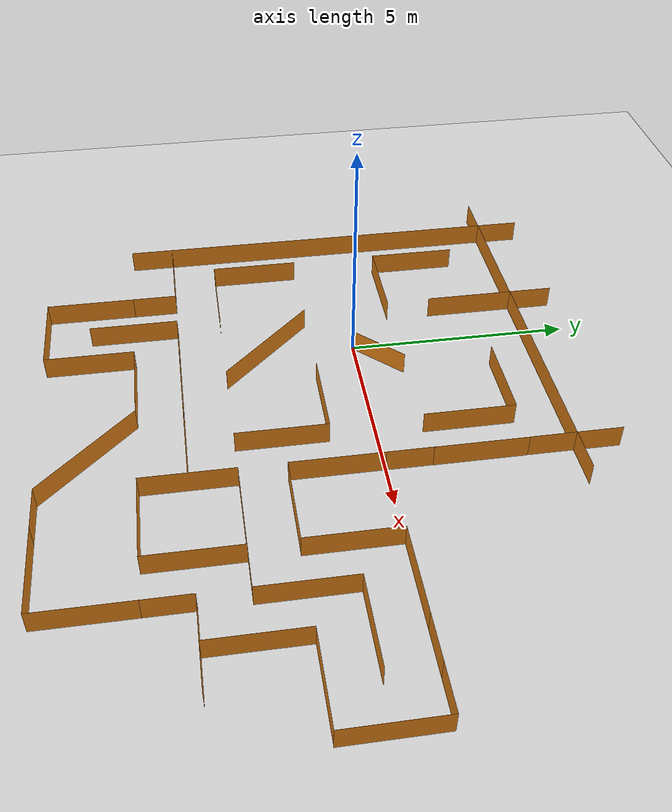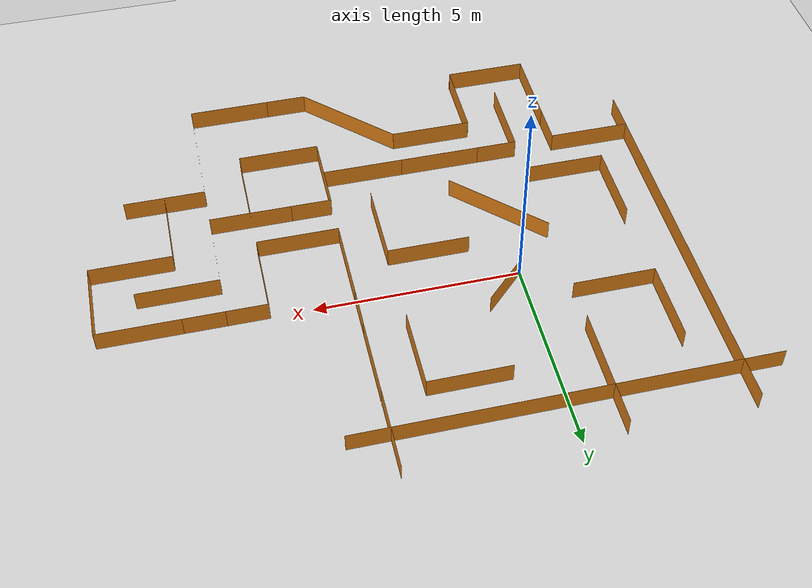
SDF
<sdf version="1.6">
 <world name="default">
  <light name="sun" type="directional">
   <pose>0 0 10 0 -0 0</pose>
   <diffuse>0.8 0.8 0.8 1</diffuse>
   <specular>0.1 0.1 0.1 1</specular>
   <attenuation>
    <range>1000</range>
    <constant>0.9</constant>
    <linear>0.01</linear>
    <quadratic>0.001</quadratic>
   </attenuation>
   <direction>-0.5 0.5 -1</direction>
  </light>
  <model name="ground_plane">
   <static>1</static>
   <link name="link">
    <collision name="collision">
     <geometry><plane><normal>0 0 1</normal><size>100 100</size></plane></geometry>
     <surface><friction><ode><mu>100</mu><mu2>50</mu2></ode></friction></surface>
    </collision>
    <visual name="visual">
     <cast_shadows>0</cast_shadows>
     <geometry><plane><normal>0 0 1</normal><size>100 100</size></plane></geometry>
     <material>
      <script><uri>file://media/materials/scripts/gazebo.material</uri><name>Gazebo/Grey</name></script>
     </material>
    </visual>
   </link>
  </model>
  <model name="wall_0">
   <static>1</static>
   <link name="link">
    <collision name="collision"><geometry><box><size>10 0.001 1</size></box></geometry></collision>
    <visual name="visual">
     <geometry><box><size>10 0.001 1</size></box></geometry>
     <material>
      <script><name>Gazebo/Orange</name><uri>file://media/materials/scripts/gazebo.material</uri></script>
     </material>
    </visual>
   </link>
   <pose>0 4 0 0 0 -3.14159</pose>
  </model>
  <model name="wall_1">
   <static>1</static>
   <link name="link">
    <collision name="collision"><geometry><box><size>10 0.001 1</size></box></geometry></collision>
    <visual name="visual">
     <geometry><box><size>10 0.001 1</size></box></geometry>
     <material>
      <script><name>Gazebo/Orange</name><uri>file://media/materials/scripts/gazebo.material</uri></script>
     </material>
    </visual>
   </link>
   <pose>-4 0 0 0 0 -1.5708</pose>
  </model>
  <model name="wall_4">
   <static>1</static>
   <link name="link">
    <collision name="collision"><geometry><box><size>2 0.001 1</size></box></geometry></collision>
    <visual name="visual">
     <geometry><box><size>2 0.001 1</size></box></geometry>
     <material>
      <script><name>Gazebo/Orange</name><uri>file://media/materials/scripts/gazebo.material</uri></script>
     </material>
    </visual>
   </link>
   <pose>-3 -2 0 0 -0 1.5708</pose>
  </model>
  <model name="wall_5">
   <static>1</static>
   <link name="link">
    <collision name="collision"><geometry><box><size>2 0.001 1</size></box></geometry></collision>
    <visual name="visual">
     <geometry><box><size>2 0.001 1</size></box></geometry>
     <material>
      <script><name>Gazebo/Orange</name><uri>file://media/materials/scripts/gazebo.material</uri></script>
     </material>
    </visual>
   </link>
   <pose>-2 -3 0 0 -0 0</pose>
  </model>
  <model name="wall_6">
   <static>1</static>
   <link name="link">
    <collision name="collision"><geometry><box><size>2 0.001 1</size></box></geometry></collision>
    <visual name="visual">
     <geometry><box><size>2 0.001 1</size></box></geometry>
     <material>
      <script><name>Gazebo/Orange</name><uri>file://media/materials/scripts/gazebo.material</uri></script>
     </material>
    </visual>
   </link>
   <pose>3 2 0 0 0 -1.5708</pose>
  </model>
  <model name="wall_7">
   <static>1</static>
   <link name="link">
    <collision name="collision"><geometry><box><size>2 0.001 1</size></box></geometry></collision>
    <visual name="visual">
     <geometry><box><size>2 0.001 1</size></box></geometry>
     <material>
      <script><name>Gazebo/Orange</name><uri>file://media/materials/scripts/gazebo.material</uri></script>
     </material>
    </visual>
   </link>
   <pose>2 3 0 0 0 -3.14159</pose>
  </model>
  <model name="wall_8">
   <static>1</static>
   <link name="link">
    <collision name="collision"><geometry><box><size>2 0.001 1</size></box></geometry></collision>
    <visual name="visual">
     <geometry><box><size>2 0.001 1</size></box></geometry>
     <material>
      <script><name>Gazebo/Orange</name><uri>file://media/materials/scripts/gazebo.material</uri></script>
     </material>
    </visual>
   </link>
   <pose>2 -1 0 0 -0 0</pose>
  </model>
  <model name="wall_9">
   <static>1</static>
   <link name="link">
    <collision name="collision"><geometry><box><size>2 0.001 1</size></box></geometry></collision>
    <visual name="visual">
     <geometry><box><size>2 0.001 1</size></box></geometry>
     <material>
      <script><name>Gazebo/Orange</name><uri>file://media/materials/scripts/gazebo.material</uri></script>
     </material>
    </visual>
   </link>
   <pose>3 -2 0 0 0 -1.5708</pose>
  </model>
  <model name="wall_10">
   <static>1</static>
   <link name="link">
    <collision name="collision"><geometry><box><size>2 0.001 1</size></box></geometry></collision>
    <visual name="visual">
     <geometry><box><size>2 0.001 1</size></box></geometry>
     <material>
      <script><name>Gazebo/Orange</name><uri>file://media/materials/scripts/gazebo.material</uri></script>
     </material>
    </visual>
   </link>
   <pose>-2 1 0 0 0 -3.14159</pose>
  </model>
  <model name="wall_11">
   <static>1</static>
   <link name="link">
    <collision name="collision"><geometry><box><size>2 0.001 1</size></box></geometry></collision>
    <visual name="visual">
     <geometry><box><size>2 0.001 1</size></box></geometry>
     <material>
      <script><name>Gazebo/Orange</name><uri>file://media/materials/scripts/gazebo.material</uri></script>
     </material>
    </visual>
   </link>
   <pose>-3 2 0 0 -0 1.5708</pose>
  </model>
  <model name="wall_12">
   <static>1</static>
   <link name="link">
    <collision name="collision"><geometry><box><size>2.82843 0.001 1</size></box></geometry></collision>
    <visual name="visual">
     <geometry><box><size>2.82843 0.001 1</size></box></geometry>
     <material>
      <script><name>Gazebo/Orange</name><uri>file://media/materials/scripts/gazebo.material</uri></script>
     </material>
    </visual>
   </link>
   <pose>0 -2 0 0 0 -0.785398</pose>
  </model>
  <model name="wall_13">
   <static>1</static>
   <link name="link">
    <collision name="collision"><geometry><box><size>3 0.001 1</size></box></geometry></collision>
    <visual name="visual">
     <geometry><box><size>3 0.001 1</size></box></geometry>
     <material>
      <script><name>Gazebo/Orange</name><uri>file://media/materials/scripts/gazebo.material</uri></script>
     </material>
    </visual>
   </link>
   <pose>-1 3.5 0 0 0 -1.5708</pose>
  </model>
  <model name="wall_14">
   <static>1</static>
   <link name="link">
    <collision name="collision"><geometry><box><size>1.41421 0.001 1</size></box></geometry></collision>
    <visual name="visual">
     <geometry><box><size>1.41421 0.001 1</size></box></geometry>
     <material>
      <script><name>Gazebo/Orange</name><uri>file://media/materials/scripts/gazebo.material</uri></script>
     </material>
    </visual>
   </link>
   <pose>0.5 0.5 0 0 -0 0.785398</pose>
  </model>
  <gravity>0 0 -9.8</gravity>
  <magnetic_field>6e-06 2.3e-05 -4.2e-05</magnetic_field>
  <atmosphere type="adiabatic"/>
  <physics name="default_physics" default="0" type="ode">
   <max_step_size>0.001</max_step_size>
   <real_time_factor>1</real_time_factor>
   <real_time_update_rate>1000</real_time_update_rate>
  </physics>
  <scene><ambient>0.4 0.4 0.4 1</ambient><background>0.7 0.7 0.7 1</background><shadows>1</shadows></scene>
  <spherical_coordinates>
   <surface_model>EARTH_WGS84</surface_model>
   <latitude_deg>0</latitude_deg>
   <longitude_deg>0</longitude_deg>
   <elevation>0</elevation>
   <heading_deg>0</heading_deg>
  </spherical_coordinates>
  <model name="wall_13_clone">
   <static>1</static>
   <link name="link">
    <collision name="collision"><geometry><box><size>2.00836 0.001 1</size></box></geometry></collision>
    <visual name="visual">
     <geometry><box><size>2.00836 0.001 1</size></box></geometry>
     <material>
      <script><name>Gazebo/Orange</name><uri>file://media/materials/scripts/gazebo.material</uri></script>
     </material>
    </visual>
   </link>
   <pose>4 -4 0 0 0 -1.5708</pose>
  </model>
  <model name="wall_13_clone_clone">
   <static>1</static>
   <link name="link">
    <collision name="collision"><geometry><box><size>1.99802 0.001 1</size></box></geometry></collision>
    <visual name="visual">
     <geometry><box><size>1.99802 0.001 1</size></box></geometry>
     <material>
      <script><name>Gazebo/Orange</name><uri>file://media/materials/scripts/gazebo.material</uri></script>
     </material>
    </visual>
   </link>
   <pose>5 -3 0 0 -0 3.14159</pose>
  </model>
  <model name="wall_13_clone_clone_0">
   <static>1</static>
   <link name="link">
    <collision name="collision"><geometry><box><size>2.00836 0.001 1</size></box></geometry></collision>
    <visual name="visual">
     <geometry><box><size>2.00836 0.001 1</size></box></geometry>
     <material>
      <script><name>Gazebo/Orange</name><uri>file://media/materials/scripts/gazebo.material</uri></script>
     </material>
    </visual>
   </link>
   <pose>4 4 0 0 0 -1.5708</pose>
  </model>
  <model name="wall_13_clone_clone_1">
   <static>1</static>
   <link name="link">
    <collision name="collision"><geometry><box><size>2.00836 0.001 1</size></box></geometry></collision>
    <visual name="visual">
     <geometry><box><size>2.00836 0.001 1</size></box></geometry>
     <material>
      <script><name>Gazebo/Orange</name><uri>file://media/materials/scripts/gazebo.material</uri></script>
     </material>
    </visual>
   </link>
   <pose>4.00414 1.99809 0 0 0 -1.5708</pose>
  </model>
  <model name="wall_13_clone_clone_1_clone">
   <static>1</static>
   <link name="link">
    <collision name="collision"><geometry><box><size>2.00836 0.001 1</size></box></geometry></collision>
    <visual name="visual">
     <geometry><box><size>2.00836 0.001 1</size></box></geometry>
     <material>
      <script><name>Gazebo/Orange</name><uri>file://media/materials/scripts/gazebo.material</uri></script>
     </material>
    </visual>
   </link>
   <pose>4 0 0 0 0 -1.5708</pose>
  </model>
  <model name="wall_13_clone_clone_1_clone_0">
   <static>1</static>
   <link name="link">
    <collision name="collision"><geometry><box><size>2.00836 0.001 1</size></box></geometry></collision>
    <visual name="visual">
     <geometry><box><size>2.00836 0.001 1</size></box></geometry>
     <material>
      <script><name>Gazebo/Orange</name><uri>file://media/materials/scripts/gazebo.material</uri></script>
     </material>
    </visual>
   </link>
   <pose>4.00011 -0.995104 0 0 0 -1.5708</pose>
  </model>
  <model name="wall_13_clone_clone_1_clone_1">
   <static>1</static>
   <link name="link">
    <collision name="collision"><geometry><box><size>2.00836 0.001 1</size></box></geometry></collision>
    <visual name="visual">
     <geometry><box><size>2.00836 0.001 1</size></box></geometry>
     <material>
      <script><name>Gazebo/Orange</name><uri>file://media/materials/scripts/gazebo.material</uri></script>
     </material>
    </visual>
   </link>
   <pose>5 -2 0 0 0 -4e-06</pose>
  </model>
  <model name="wall_13_clone_clone_1_clone_2">
   <static>1</static>
   <link name="link">
    <collision name="collision"><geometry><box><size>2.00836 0.001 1</size></box></geometry></collision>
    <visual name="visual">
     <geometry><box><size>2.00836 0.001 1</size></box></geometry>
     <material>
      <script><name>Gazebo/Orange</name><uri>file://media/materials/scripts/gazebo.material</uri></script>
     </material>
    </visual>
   </link>
   <pose>7 -2 0 0 0 -1.5708</pose>
  </model>
  <model name="wall_13_clone_clone_1_clone_3">
   <static>1</static>
   <link name="link">
    <collision name="collision"><geometry><box><size>2.00836 0.001 1</size></box></geometry></collision>
    <visual name="visual">
     <geometry><box><size>2.00836 0.001 1</size></box></geometry>
     <material>
      <script><name>Gazebo/Orange</name><uri>file://media/materials/scripts/gazebo.material</uri></script>
     </material>
    </visual>
   </link>
   <pose>6 -1 0 0 0 -1.5708</pose>
  </model>
  <model name="wall_13_clone_clone_1_clone_4">
   <static>1</static>
   <link name="link">
    <collision name="collision"><geometry><box><size>2.00836 0.001 1</size></box></geometry></collision>
    <visual name="visual">
     <geometry><box><size>2.00836 0.001 1</size></box></geometry>
     <material>
      <script><name>Gazebo/Orange</name><uri>file://media/materials/scripts/gazebo.material</uri></script>
     </material>
    </visual>
   </link>
   <pose>7 -2 0 0 0 -1.5708</pose>
  </model>
  <model name="wall_13_clone_clone_1_clone_5">
   <static>1</static>
   <link name="link">
    <collision name="collision"><geometry><box><size>2.00836 0.001 1</size></box></geometry></collision>
    <visual name="visual">
     <geometry><box><size>2.00836 0.001 1</size></box></geometry>
     <material>
      <script><name>Gazebo/Orange</name><uri>file://media/materials/scripts/gazebo.material</uri></script>
     </material>
    </visual>
   </link>
   <pose>6 -3 0 0 -0 3.14159</pose>
  </model>
  <model name="wall_13_clone_clone_clone">
   <static>1</static>
   <link name="link">
    <collision name="collision"><geometry><box><size>1.99802 0.001 1</size></box></geometry></collision>
    <visual name="visual">
     <geometry><box><size>1.99802 0.001 1</size></box></geometry>
     <material>
      <script><name>Gazebo/Orange</name><uri>file://media/materials/scripts/gazebo.material</uri></script>
     </material>
    </visual>
   </link>
   <pose>-3 -4 0 0 -0 3.14159</pose>
  </model>
  <model name="wall_13_clone_clone_clone_1">
   <static>1</static>
   <link name="link">
    <collision name="collision"><geometry><box><size>1.99802 0.001 1</size></box></geometry></collision>
    <visual name="visual">
     <geometry><box><size>1.99802 0.001 1</size></box></geometry>
     <material>
      <script><name>Gazebo/Orange</name><uri>file://media/materials/scripts/gazebo.material</uri></script>
     </material>
    </visual>
   </link>
   <pose>1 -4 0 0 -0 3.14159</pose>
  </model>
  <model name="wall_13_clone_clone_clone_2">
   <static>1</static>
   <link name="link">
    <collision name="collision"><geometry><box><size>1.99802 0.001 1</size></box></geometry></collision>
    <visual name="visual">
     <geometry><box><size>1.99802 0.001 1</size></box></geometry>
     <material>
      <script><name>Gazebo/Orange</name><uri>file://media/materials/scripts/gazebo.material</uri></script>
     </material>
    </visual>
   </link>
   <pose>3 -4 0 0 -0 3.14159</pose>
  </model>
  <model name="wall_13_clone_clone_1_clone_3_clone">
   <static>1</static>
   <link name="link">
    <collision name="collision"><geometry><box><size>2.00836 0.001 1</size></box></geometry></collision>
    <visual name="visual">
     <geometry><box><size>2.00836 0.001 1</size></box></geometry>
     <material>
      <script><name>Gazebo/Orange</name><uri>file://media/materials/scripts/gazebo.material</uri></script>
     </material>
    </visual>
   </link>
   <pose>-2 -5 0 0 0 -1.5708</pose>
  </model>
  <model name="wall_13_clone_clone_1_clone_3_clone_0">
   <static>1</static>
   <link name="link">
    <collision name="collision"><geometry><box><size>2.00836 0.001 1</size></box></geometry></collision>
    <visual name="visual">
     <geometry><box><size>2.00836 0.001 1</size></box></geometry>
     <material>
      <script><name>Gazebo/Orange</name><uri>file://media/materials/scripts/gazebo.material</uri></script>
     </material>
    </visual>
   </link>
   <pose>-1 -5 0 0 0 -1.5708</pose>
  </model>
  <model name="wall_13_clone_clone_1_clone_1_clone">
   <static>1</static>
   <link name="link">
    <collision name="collision"><geometry><box><size>2.00836 0.001 1</size></box></geometry></collision>
    <visual name="visual">
     <geometry><box><size>2.00836 0.001 1</size></box></geometry>
     <material>
      <script><name>Gazebo/Orange</name><uri>file://media/materials/scripts/gazebo.material</uri></script>
     </material>
    </visual>
   </link>
   <pose>0 -4 0 0 0 -4e-06</pose>
  </model>
  <model name="wall_13_clone_clone_1_clone_1_clone_0">
   <static>1</static>
   <link name="link">
    <collision name="collision"><geometry><box><size>2.00836 0.001 1</size></box></geometry></collision>
    <visual name="visual">
     <geometry><box><size>2.00836 0.001 1</size></box></geometry>
     <material>
      <script><name>Gazebo/Orange</name><uri>file://media/materials/scripts/gazebo.material</uri></script>
     </material>
    </visual>
   </link>
   <pose>-1 -7 0 0 0 -4e-06</pose>
  </model>
  <model name="wall_13_clone_clone_1_clone_0_clone">
   <static>1</static>
   <link name="link">
    <collision name="collision"><geometry><box><size>2.00836 0.001 1</size></box></geometry></collision>
    <visual name="visual">
     <geometry><box><size>2.00836 0.001 1</size></box></geometry>
     <material>
      <script><name>Gazebo/Orange</name><uri>file://media/materials/scripts/gazebo.material</uri></script>
     </material>
    </visual>
   </link>
   <pose>-2 -6 0 0 0 -1.5708</pose>
  </model>
  <model name="wall_13_clone_clone_1_clone_0_clone_0">
   <static>1</static>
   <link name="link">
    <collision name="collision"><geometry><box><size>2.00836 0.001 1</size></box></geometry></collision>
    <visual name="visual">
     <geometry><box><size>2.00836 0.001 1</size></box></geometry>
     <material>
      <script><name>Gazebo/Orange</name><uri>file://media/materials/scripts/gazebo.material</uri></script>
     </material>
    </visual>
   </link>
   <pose>0 -6 0 0 0 -1.5708</pose>
  </model>
  <model name="wall_13_clone_clone_clone_1_clone">
   <static>1</static>
   <link name="link">
    <collision name="collision"><geometry><box><size>1.99802 0.001 1</size></box></geometry></collision>
    <visual name="visual">
     <geometry><box><size>1.99802 0.001 1</size></box></geometry>
     <material>
      <script><name>Gazebo/Orange</name><uri>file://media/materials/scripts/gazebo.material</uri></script>
     </material>
    </visual>
   </link>
   <pose>1 -5 0 0 -0 3.14159</pose>
  </model>
  <model name="wall_13_clone_clone_clone_1_clone_0">
   <static>1</static>
   <link name="link">
    <collision name="collision"><geometry><box><size>2.83181 0.001 1</size></box></geometry></collision>
    <visual name="visual">
     <geometry><box><size>2.83181 0.001 1</size></box></geometry>
     <material>
      <script><name>Gazebo/Orange</name><uri>file://media/materials/scripts/gazebo.material</uri></script>
     </material>
    </visual>
   </link>
   <pose>3 -6 0 0 -0 2.35619</pose>
  </model>
  <model name="wall_13_clone_clone_clone_1_clone_1">
   <static>1</static>
   <link name="link">
    <collision name="collision"><geometry><box><size>1.99802 0.001 1</size></box></geometry></collision>
    <visual name="visual">
     <geometry><box><size>1.99802 0.001 1</size></box></geometry>
     <material>
      <script><name>Gazebo/Orange</name><uri>file://media/materials/scripts/gazebo.material</uri></script>
     </material>
    </visual>
   </link>
   <pose>5 -7 0 0 -0 3.14159</pose>
  </model>
  <model name="wall_13_clone_clone_clone_1_clone_2">
   <static>1</static>
   <link name="link">
    <collision name="collision"><geometry><box><size>1.99802 0.001 1</size></box></geometry></collision>
    <visual name="visual">
     <geometry><box><size>1.99802 0.001 1</size></box></geometry>
     <material>
      <script><name>Gazebo/Orange</name><uri>file://media/materials/scripts/gazebo.material</uri></script>
     </material>
    </visual>
   </link>
   <pose>5 -5 0 0 -0 3.14159</pose>
  </model>
  <model name="wall_13_clone_clone_1_clone_3_clone_1">
   <static>1</static>
   <link name="link">
    <collision name="collision"><geometry><box><size>2.00836 0.001 1</size></box></geometry></collision>
    <visual name="visual">
     <geometry><box><size>2.00836 0.001 1</size></box></geometry>
     <material>
      <script><name>Gazebo/Orange</name><uri>file://media/materials/scripts/gazebo.material</uri></script>
     </material>
    </visual>
   </link>
   <pose>7 -6 0 0 0 -1.5708</pose>
  </model>
  <model name="wall_13_clone_clone_1_clone_3_clone_2">
   <static>1</static>
   <link name="link">
    <collision name="collision"><geometry><box><size>2.00836 0.001 1</size></box></geometry></collision>
    <visual name="visual">
     <geometry><box><size>2.00836 0.001 1</size></box></geometry>
     <material>
      <script><name>Gazebo/Orange</name><uri>file://media/materials/scripts/gazebo.material</uri></script>
     </material>
    </visual>
   </link>
   <pose>7 -5 0 0 0 -1.5708</pose>
  </model>
  <model name="wall_13_clone_clone_1_clone_3_clone_3">
   <static>1</static>
   <link name="link">
    <collision name="collision"><geometry><box><size>2.00836 0.001 1</size></box></geometry></collision>
    <visual name="visual">
     <geometry><box><size>2.00836 0.001 1</size></box></geometry>
     <material>
      <script><name>Gazebo/Orange</name><uri>file://media/materials/scripts/gazebo.material</uri></script>
     </material>
    </visual>
   </link>
   <pose>6 -4 0 0 0 -1.5708</pose>
  </model>
  <model name="wall_13_clone_clone_clone_1_clone_1_clone">
   <static>1</static>
   <link name="link">
    <collision name="collision"><geometry><box><size>1.99802 0.001 1</size></box></geometry></collision>
    <visual name="visual">
     <geometry><box><size>1.99802 0.001 1</size></box></geometry>
     <material>
      <script><name>Gazebo/Orange</name><uri>file://media/materials/scripts/gazebo.material</uri></script>
     </material>
    </visual>
   </link>
   <pose>6 -7 0 0 -0 3.14159</pose>
  </model>
  <model name="wall_13_clone_clone_clone_1_clone_1_clone_0">
   <static>1</static>
   <link name="link">
    <collision name="collision"><geometry><box><size>1.99802 0.001 1</size></box></geometry></collision>
    <visual name="visual">
     <geometry><box><size>1.99802 0.001 1</size></box></geometry>
     <material>
      <script><name>Gazebo/Orange</name><uri>file://media/materials/scripts/gazebo.material</uri></script>
     </material>
    </visual>
   </link>
   <pose>8 -4 0 0 -0 3.14159</pose>
  </model>
  <model name="wall_13_clone_clone_1_clone_3_clone_1_clone">
   <static>1</static>
   <link name="link">
    <collision name="collision"><geometry><box><size>2.00836 0.001 1</size></box></geometry></collision>
    <visual name="visual">
     <geometry><box><size>2.00836 0.001 1</size></box></geometry>
     <material>
      <script><name>Gazebo/Orange</name><uri>file://media/materials/scripts/gazebo.material</uri></script>
     </material>
    </visual>
   </link>
   <pose>8 -3 0 0 0 -1.5708</pose>
  </model>
  <model name="wall_13_clone_clone_clone_1_clone_1_clone_0_clone">
   <static>1</static>
   <link name="link">
    <collision name="collision"><geometry><box><size>1.99802 0.001 1</size></box></geometry></collision>
    <visual name="visual">
     <geometry><box><size>1.99802 0.001 1</size></box></geometry>
     <material>
      <script><name>Gazebo/Orange</name><uri>file://media/materials/scripts/gazebo.material</uri></script>
     </material>
    </visual>
   </link>
   <pose>7 0 0 0 -0 3.14159</pose>
  </model>
  <model name="wall_13_clone_clone_1_clone_4_clone">
   <static>1</static>
   <link name="link">
    <collision name="collision"><geometry><box><size>2.00836 0.001 1</size></box></geometry></collision>
    <visual name="visual">
     <geometry><box><size>2.00836 0.001 1</size></box></geometry>
     <material>
      <script><name>Gazebo/Orange</name><uri>file://media/materials/scripts/gazebo.material</uri></script>
     </material>
    </visual>
   </link>
   <pose>6 -1 0 0 0 -1.5708</pose>
  </model>
  <model name="wall_13_clone_clone_clone_1_clone_1_clone_0_clone_clone">
   <static>1</static>
   <link name="link">
    <collision name="collision"><geometry><box><size>1.99802 0.001 1</size></box></geometry></collision>
    <visual name="visual">
     <geometry><box><size>1.99802 0.001 1</size></box></geometry>
     <material>
      <script><name>Gazebo/Orange</name><uri>file://media/materials/scripts/gazebo.material</uri></script>
     </material>
    </visual>
   </link>
   <pose>8 0 0 0 -0 3.14159</pose>
  </model>
  <model name="wall_13_clone_clone_clone_1_clone_1_clone_0_clone_clone_0">
   <static>1</static>
   <link name="link">
    <collision name="collision"><geometry><box><size>1.99802 0.001 1</size></box></geometry></collision>
    <visual name="visual">
     <geometry><box><size>1.99802 0.001 1</size></box></geometry>
     <material>
      <script><name>Gazebo/Orange</name><uri>file://media/materials/scripts/gazebo.material</uri></script>
     </material>
    </visual>
   </link>
   <pose>9 -2 0 0 -0 3.14159</pose>
  </model>
  <model name="wall_13_clone_clone_clone_1_clone_1_clone_0_clone_clone_1">
   <static>1</static>
   <link name="link">
    <collision name="collision"><geometry><box><size>1.99802 0.001 1</size></box></geometry></collision>
    <visual name="visual">
     <geometry><box><size>1.99802 0.001 1</size></box></geometry>
     <material>
      <script><name>Gazebo/Orange</name><uri>file://media/materials/scripts/gazebo.material</uri></script>
     </material>
    </visual>
   </link>
   <pose>8 -1 0 0 -0 3.14159</pose>
  </model>
  <model name="wall_13_clone_clone_1_clone_2_clone">
   <static>1</static>
   <link name="link">
    <collision name="collision"><geometry><box><size>2.00836 0.001 1</size></box></geometry></collision>
    <visual name="visual">
     <geometry><box><size>2.00836 0.001 1</size></box></geometry>
     <material>
      <script><name>Gazebo/Orange</name><uri>file://media/materials/scripts/gazebo.material</uri></script>
     </material>
    </visual>
   </link>
   <pose>10 -1 0 0 0 -1.5708</pose>
  </model>
  <model name="wall_13_clone_clone_clone_1_clone_1_clone_0_clone_clone_clone">
   <static>1</static>
   <link name="link">
    <collision name="collision"><geometry><box><size>1.99802 0.001 1</size></box></geometry></collision>
    <visual name="visual">
     <geometry><box><size>1.99802 0.001 1</size></box></geometry>
     <material>
      <script><name>Gazebo/Orange</name><uri>file://media/materials/scripts/gazebo.material</uri></script>
     </material>
    </visual>
   </link>
   <pose>9 0 0 0 -0 3.14159</pose>
  </model>
 </world>
</sdf>
